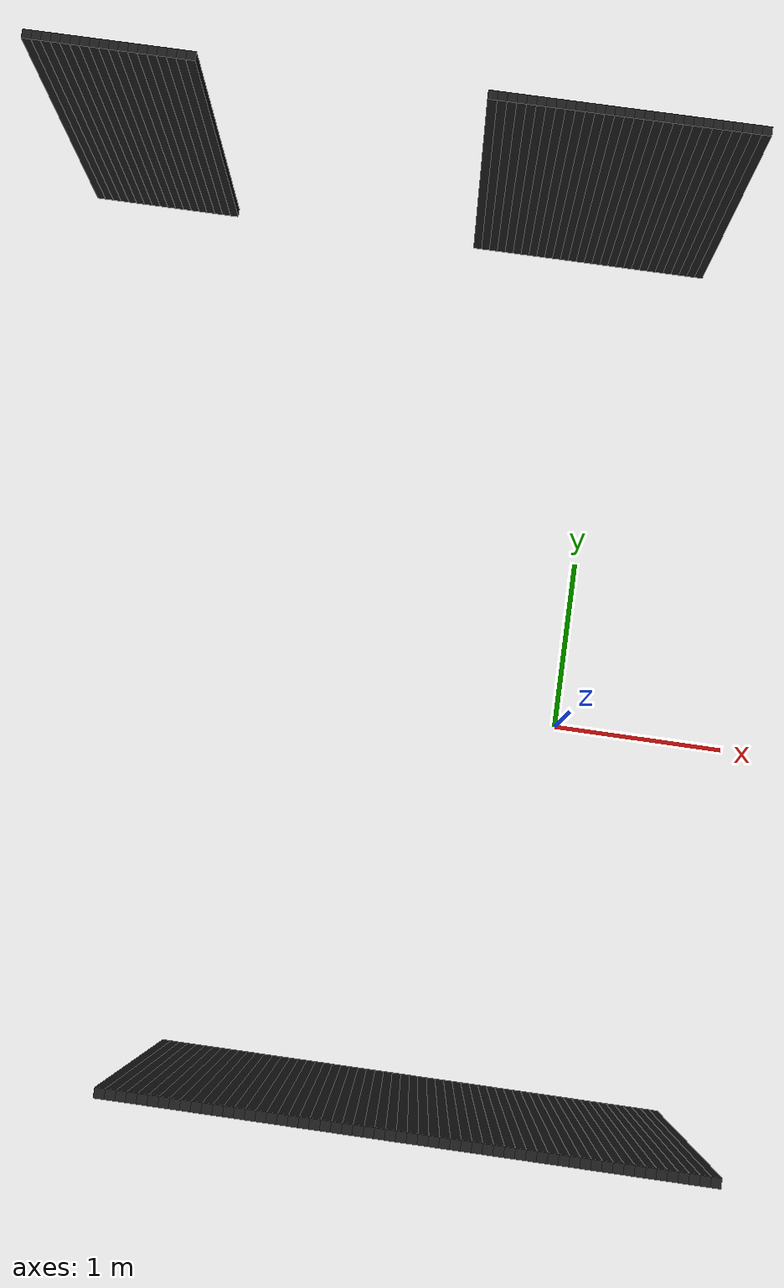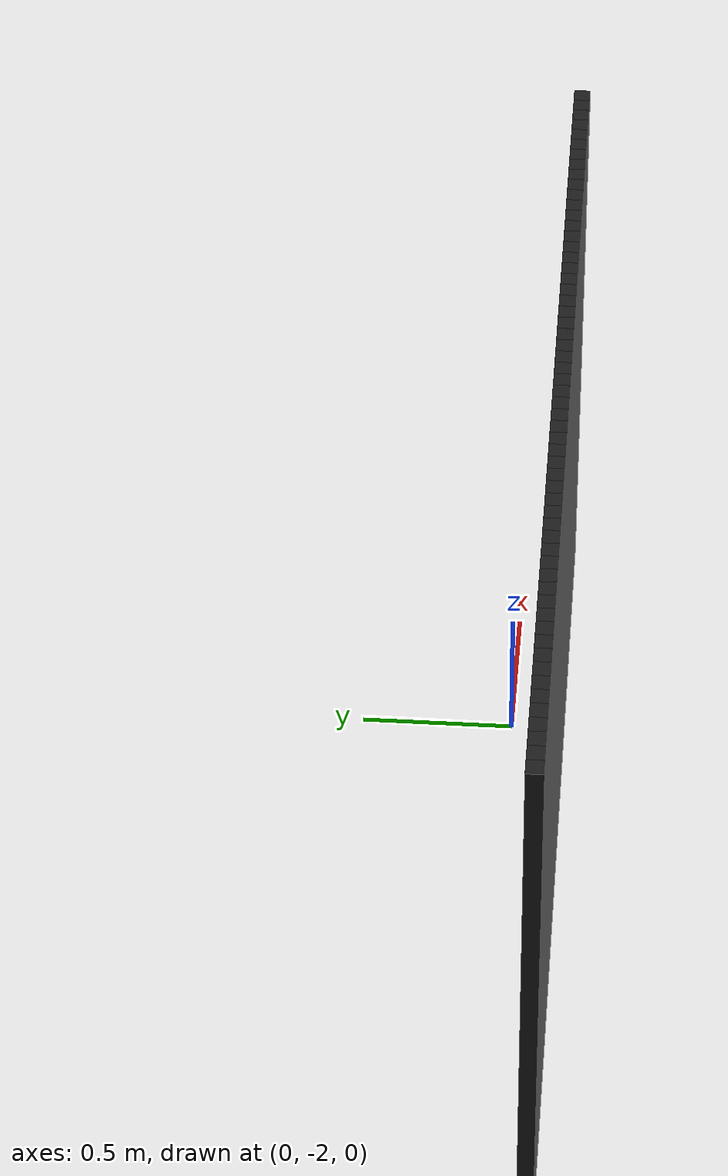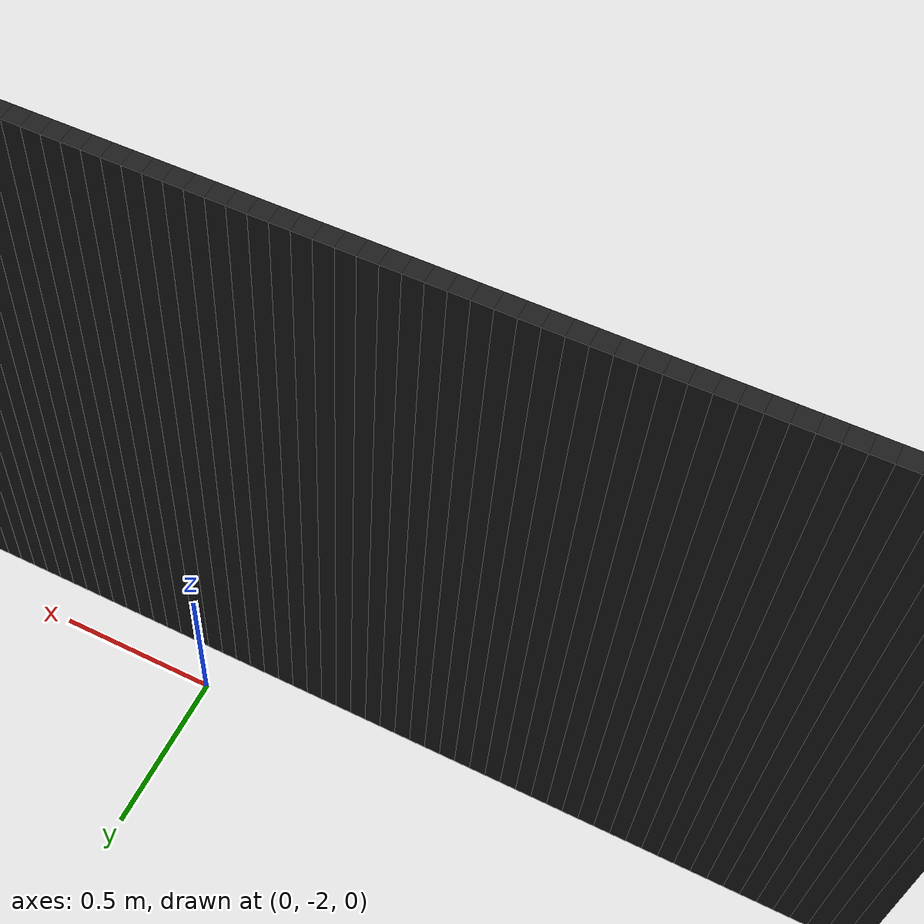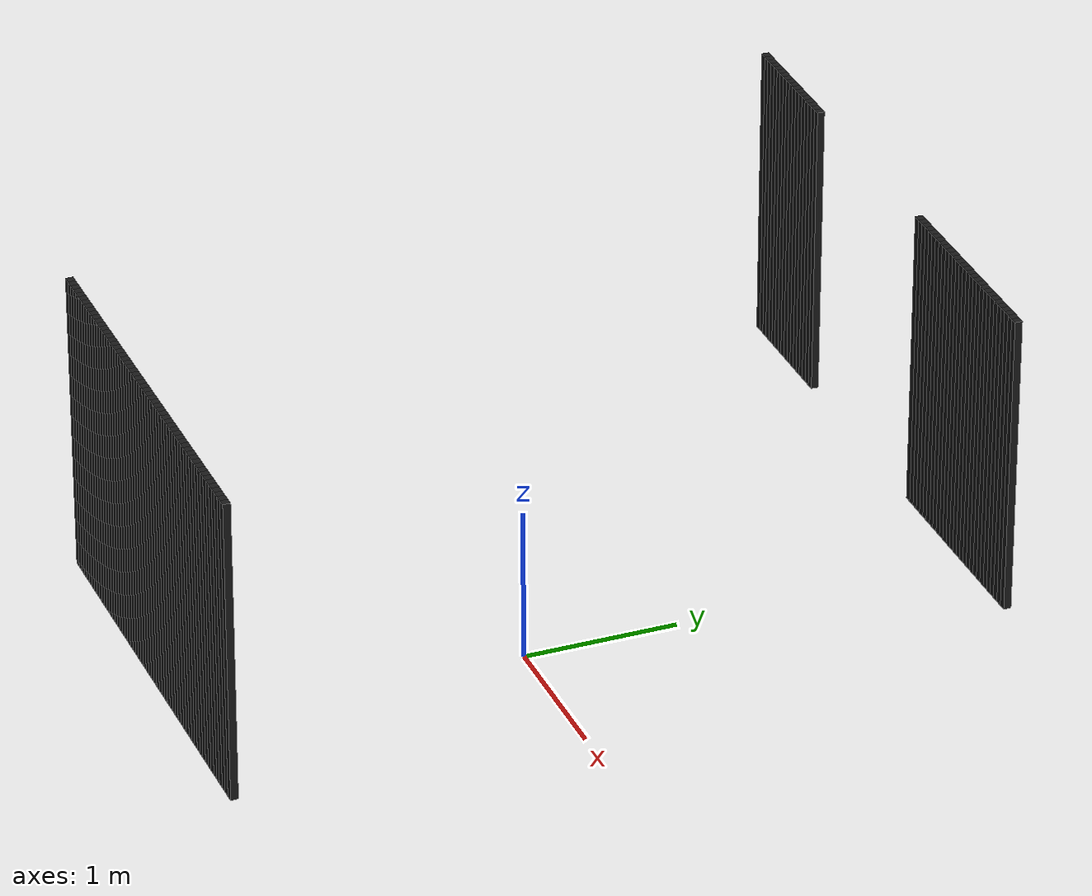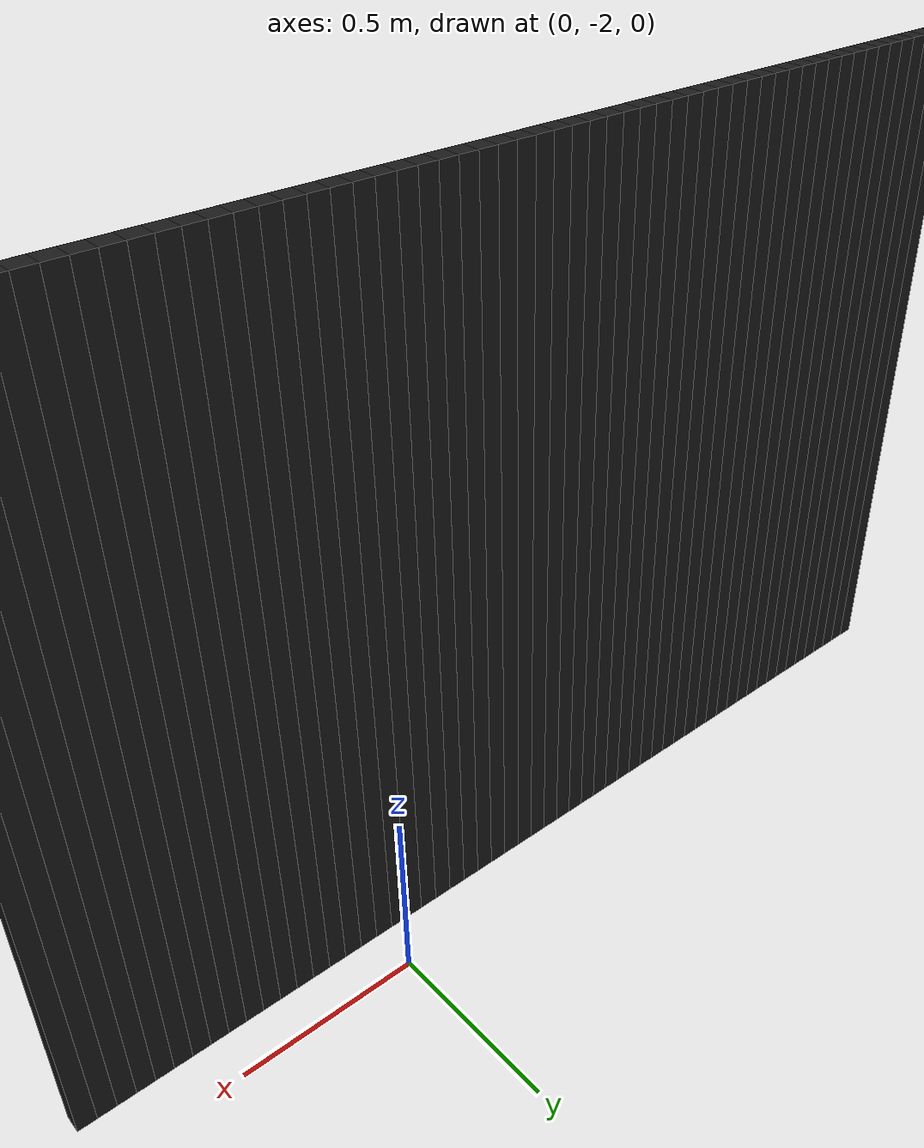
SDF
<sdf version="1.6">
 <model name="obstacle_25_108">
  <pose>-3.26 2.95 1.0 0 0 0</pose>
  <static>true</static>
  <link name="box_link">
   <collision name="box_collision"><geometry><box><size>0.05 0.05 2.0</size></box></geometry></collision>
   <visual name="box_visual">
    <geometry><box><size>0.05 0.05 2.0</size></box></geometry>
    <material><ambient>0 0 0 1</ambient><diffuse>0.1 0.1 0.1 1</diffuse></material>
   </visual>
  </link>
 </model>
 <model name="obstacle_26_108">
  <pose>-3.21 2.95 1.0 0 0 0</pose>
  <static>true</static>
  <link name="box_link">
   <collision name="box_collision"><geometry><box><size>0.05 0.05 2.0</size></box></geometry></collision>
   <visual name="box_visual">
    <geometry><box><size>0.05 0.05 2.0</size></box></geometry>
    <material><ambient>0 0 0 1</ambient><diffuse>0.1 0.1 0.1 1</diffuse></material>
   </visual>
  </link>
 </model>
 <model name="obstacle_27_108">
  <pose>-3.1599999999999997 2.95 1.0 0 0 0</pose>
  <static>true</static>
  <link name="box_link">
   <collision name="box_collision"><geometry><box><size>0.05 0.05 2.0</size></box></geometry></collision>
   <visual name="box_visual">
    <geometry><box><size>0.05 0.05 2.0</size></box></geometry>
    <material><ambient>0 0 0 1</ambient><diffuse>0.1 0.1 0.1 1</diffuse></material>
   </visual>
  </link>
 </model>
 <model name="obstacle_28_108">
  <pose>-3.1099999999999994 2.95 1.0 0 0 0</pose>
  <static>true</static>
  <link name="box_link">
   <collision name="box_collision"><geometry><box><size>0.05 0.05 2.0</size></box></geometry></collision>
   <visual name="box_visual">
    <geometry><box><size>0.05 0.05 2.0</size></box></geometry>
    <material><ambient>0 0 0 1</ambient><diffuse>0.1 0.1 0.1 1</diffuse></material>
   </visual>
  </link>
 </model>
 <model name="obstacle_29_108">
  <pose>-3.0599999999999996 2.95 1.0 0 0 0</pose>
  <static>true</static>
  <link name="box_link">
   <collision name="box_collision"><geometry><box><size>0.05 0.05 2.0</size></box></geometry></collision>
   <visual name="box_visual">
    <geometry><box><size>0.05 0.05 2.0</size></box></geometry>
    <material><ambient>0 0 0 1</ambient><diffuse>0.1 0.1 0.1 1</diffuse></material>
   </visual>
  </link>
 </model>
 <model name="obstacle_30_108">
  <pose>-3.01 2.95 1.0 0 0 0</pose>
  <static>true</static>
  <link name="box_link">
   <collision name="box_collision"><geometry><box><size>0.05 0.05 2.0</size></box></geometry></collision>
   <visual name="box_visual">
    <geometry><box><size>0.05 0.05 2.0</size></box></geometry>
    <material><ambient>0 0 0 1</ambient><diffuse>0.1 0.1 0.1 1</diffuse></material>
   </visual>
  </link>
 </model>
 <model name="obstacle_31_108">
  <pose>-2.96 2.95 1.0 0 0 0</pose>
  <static>true</static>
  <link name="box_link">
   <collision name="box_collision"><geometry><box><size>0.05 0.05 2.0</size></box></geometry></collision>
   <visual name="box_visual">
    <geometry><box><size>0.05 0.05 2.0</size></box></geometry>
    <material><ambient>0 0 0 1</ambient><diffuse>0.1 0.1 0.1 1</diffuse></material>
   </visual>
  </link>
 </model>
 <model name="obstacle_32_108">
  <pose>-2.9099999999999997 2.95 1.0 0 0 0</pose>
  <static>true</static>
  <link name="box_link">
   <collision name="box_collision"><geometry><box><size>0.05 0.05 2.0</size></box></geometry></collision>
   <visual name="box_visual">
    <geometry><box><size>0.05 0.05 2.0</size></box></geometry>
    <material><ambient>0 0 0 1</ambient><diffuse>0.1 0.1 0.1 1</diffuse></material>
   </visual>
  </link>
 </model>
 <model name="obstacle_33_108">
  <pose>-2.8599999999999994 2.95 1.0 0 0 0</pose>
  <static>true</static>
  <link name="box_link">
   <collision name="box_collision"><geometry><box><size>0.05 0.05 2.0</size></box></geometry></collision>
   <visual name="box_visual">
    <geometry><box><size>0.05 0.05 2.0</size></box></geometry>
    <material><ambient>0 0 0 1</ambient><diffuse>0.1 0.1 0.1 1</diffuse></material>
   </visual>
  </link>
 </model>
 <model name="obstacle_34_108">
  <pose>-2.8099999999999996 2.95 1.0 0 0 0</pose>
  <static>true</static>
  <link name="box_link">
   <collision name="box_collision"><geometry><box><size>0.05 0.05 2.0</size></box></geometry></collision>
   <visual name="box_visual">
    <geometry><box><size>0.05 0.05 2.0</size></box></geometry>
    <material><ambient>0 0 0 1</ambient><diffuse>0.1 0.1 0.1 1</diffuse></material>
   </visual>
  </link>
 </model>
 <model name="obstacle_35_108">
  <pose>-2.76 2.95 1.0 0 0 0</pose>
  <static>true</static>
  <link name="box_link">
   <collision name="box_collision"><geometry><box><size>0.05 0.05 2.0</size></box></geometry></collision>
   <visual name="box_visual">
    <geometry><box><size>0.05 0.05 2.0</size></box></geometry>
    <material><ambient>0 0 0 1</ambient><diffuse>0.1 0.1 0.1 1</diffuse></material>
   </visual>
  </link>
 </model>
 <model name="obstacle_36_108">
  <pose>-2.71 2.95 1.0 0 0 0</pose>
  <static>true</static>
  <link name="box_link">
   <collision name="box_collision"><geometry><box><size>0.05 0.05 2.0</size></box></geometry></collision>
   <visual name="box_visual">
    <geometry><box><size>0.05 0.05 2.0</size></box></geometry>
    <material><ambient>0 0 0 1</ambient><diffuse>0.1 0.1 0.1 1</diffuse></material>
   </visual>
  </link>
 </model>
 <model name="obstacle_37_108">
  <pose>-2.6599999999999997 2.95 1.0 0 0 0</pose>
  <static>true</static>
  <link name="box_link">
   <collision name="box_collision"><geometry><box><size>0.05 0.05 2.0</size></box></geometry></collision>
   <visual name="box_visual">
    <geometry><box><size>0.05 0.05 2.0</size></box></geometry>
    <material><ambient>0 0 0 1</ambient><diffuse>0.1 0.1 0.1 1</diffuse></material>
   </visual>
  </link>
 </model>
 <model name="obstacle_38_108">
  <pose>-2.6099999999999994 2.95 1.0 0 0 0</pose>
  <static>true</static>
  <link name="box_link">
   <collision name="box_collision"><geometry><box><size>0.05 0.05 2.0</size></box></geometry></collision>
   <visual name="box_visual">
    <geometry><box><size>0.05 0.05 2.0</size></box></geometry>
    <material><ambient>0 0 0 1</ambient><diffuse>0.1 0.1 0.1 1</diffuse></material>
   </visual>
  </link>
 </model>
 <model name="obstacle_39_108">
  <pose>-2.5599999999999996 2.95 1.0 0 0 0</pose>
  <static>true</static>
  <link name="box_link">
   <collision name="box_collision"><geometry><box><size>0.05 0.05 2.0</size></box></geometry></collision>
   <visual name="box_visual">
    <geometry><box><size>0.05 0.05 2.0</size></box></geometry>
    <material><ambient>0 0 0 1</ambient><diffuse>0.1 0.1 0.1 1</diffuse></material>
   </visual>
  </link>
 </model>
 <model name="obstacle_40_108">
  <pose>-2.51 2.95 1.0 0 0 0</pose>
  <static>true</static>
  <link name="box_link">
   <collision name="box_collision"><geometry><box><size>0.05 0.05 2.0</size></box></geometry></collision>
   <visual name="box_visual">
    <geometry><box><size>0.05 0.05 2.0</size></box></geometry>
    <material><ambient>0 0 0 1</ambient><diffuse>0.1 0.1 0.1 1</diffuse></material>
   </visual>
  </link>
 </model>
 <model name="obstacle_41_108">
  <pose>-2.4599999999999995 2.95 1.0 0 0 0</pose>
  <static>true</static>
  <link name="box_link">
   <collision name="box_collision"><geometry><box><size>0.05 0.05 2.0</size></box></geometry></collision>
   <visual name="box_visual">
    <geometry><box><size>0.05 0.05 2.0</size></box></geometry>
    <material><ambient>0 0 0 1</ambient><diffuse>0.1 0.1 0.1 1</diffuse></material>
   </visual>
  </link>
 </model>
 <model name="obstacle_42_108">
  <pose>-2.4099999999999997 2.95 1.0 0 0 0</pose>
  <static>true</static>
  <link name="box_link">
   <collision name="box_collision"><geometry><box><size>0.05 0.05 2.0</size></box></geometry></collision>
   <visual name="box_visual">
    <geometry><box><size>0.05 0.05 2.0</size></box></geometry>
    <material><ambient>0 0 0 1</ambient><diffuse>0.1 0.1 0.1 1</diffuse></material>
   </visual>
  </link>
 </model>
 <model name="obstacle_73_108">
  <pose>-0.8599999999999994 2.95 1.0 0 0 0</pose>
  <static>true</static>
  <link name="box_link">
   <collision name="box_collision"><geometry><box><size>0.05 0.05 2.0</size></box></geometry></collision>
   <visual name="box_visual">
    <geometry><box><size>0.05 0.05 2.0</size></box></geometry>
    <material><ambient>0 0 0 1</ambient><diffuse>0.1 0.1 0.1 1</diffuse></material>
   </visual>
  </link>
 </model>
 <model name="obstacle_74_108">
  <pose>-0.8099999999999996 2.95 1.0 0 0 0</pose>
  <static>true</static>
  <link name="box_link">
   <collision name="box_collision"><geometry><box><size>0.05 0.05 2.0</size></box></geometry></collision>
   <visual name="box_visual">
    <geometry><box><size>0.05 0.05 2.0</size></box></geometry>
    <material><ambient>0 0 0 1</ambient><diffuse>0.1 0.1 0.1 1</diffuse></material>
   </visual>
  </link>
 </model>
 <model name="obstacle_75_108">
  <pose>-0.7599999999999998 2.95 1.0 0 0 0</pose>
  <static>true</static>
  <link name="box_link">
   <collision name="box_collision"><geometry><box><size>0.05 0.05 2.0</size></box></geometry></collision>
   <visual name="box_visual">
    <geometry><box><size>0.05 0.05 2.0</size></box></geometry>
    <material><ambient>0 0 0 1</ambient><diffuse>0.1 0.1 0.1 1</diffuse></material>
   </visual>
  </link>
 </model>
 <model name="obstacle_76_108">
  <pose>-0.7099999999999995 2.95 1.0 0 0 0</pose>
  <static>true</static>
  <link name="box_link">
   <collision name="box_collision"><geometry><box><size>0.05 0.05 2.0</size></box></geometry></collision>
   <visual name="box_visual">
    <geometry><box><size>0.05 0.05 2.0</size></box></geometry>
    <material><ambient>0 0 0 1</ambient><diffuse>0.1 0.1 0.1 1</diffuse></material>
   </visual>
  </link>
 </model>
 <model name="obstacle_77_108">
  <pose>-0.6599999999999997 2.95 1.0 0 0 0</pose>
  <static>true</static>
  <link name="box_link">
   <collision name="box_collision"><geometry><box><size>0.05 0.05 2.0</size></box></geometry></collision>
   <visual name="box_visual">
    <geometry><box><size>0.05 0.05 2.0</size></box></geometry>
    <material><ambient>0 0 0 1</ambient><diffuse>0.1 0.1 0.1 1</diffuse></material>
   </visual>
  </link>
 </model>
 <model name="obstacle_78_108">
  <pose>-0.6099999999999994 2.95 1.0 0 0 0</pose>
  <static>true</static>
  <link name="box_link">
   <collision name="box_collision"><geometry><box><size>0.05 0.05 2.0</size></box></geometry></collision>
   <visual name="box_visual">
    <geometry><box><size>0.05 0.05 2.0</size></box></geometry>
    <material><ambient>0 0 0 1</ambient><diffuse>0.1 0.1 0.1 1</diffuse></material>
   </visual>
  </link>
 </model>
 <model name="obstacle_79_108">
  <pose>-0.5599999999999996 2.95 1.0 0 0 0</pose>
  <static>true</static>
  <link name="box_link">
   <collision name="box_collision"><geometry><box><size>0.05 0.05 2.0</size></box></geometry></collision>
   <visual name="box_visual">
    <geometry><box><size>0.05 0.05 2.0</size></box></geometry>
    <material><ambient>0 0 0 1</ambient><diffuse>0.1 0.1 0.1 1</diffuse></material>
   </visual>
  </link>
 </model>
 <model name="obstacle_80_108">
  <pose>-0.5099999999999998 2.95 1.0 0 0 0</pose>
  <static>true</static>
  <link name="box_link">
   <collision name="box_collision"><geometry><box><size>0.05 0.05 2.0</size></box></geometry></collision>
   <visual name="box_visual">
    <geometry><box><size>0.05 0.05 2.0</size></box></geometry>
    <material><ambient>0 0 0 1</ambient><diffuse>0.1 0.1 0.1 1</diffuse></material>
   </visual>
  </link>
 </model>
 <model name="obstacle_81_108">
  <pose>-0.45999999999999996 2.95 1.0 0 0 0</pose>
  <static>true</static>
  <link name="box_link">
   <collision name="box_collision"><geometry><box><size>0.05 0.05 2.0</size></box></geometry></collision>
   <visual name="box_visual">
    <geometry><box><size>0.05 0.05 2.0</size></box></geometry>
    <material><ambient>0 0 0 1</ambient><diffuse>0.1 0.1 0.1 1</diffuse></material>
   </visual>
  </link>
 </model>
 <model name="obstacle_82_108">
  <pose>-0.40999999999999925 2.95 1.0 0 0 0</pose>
  <static>true</static>
  <link name="box_link">
   <collision name="box_collision"><geometry><box><size>0.05 0.05 2.0</size></box></geometry></collision>
   <visual name="box_visual">
    <geometry><box><size>0.05 0.05 2.0</size></box></geometry>
    <material><ambient>0 0 0 1</ambient><diffuse>0.1 0.1 0.1 1</diffuse></material>
   </visual>
  </link>
 </model>
 <model name="obstacle_83_108">
  <pose>-0.35999999999999943 2.95 1.0 0 0 0</pose>
  <static>true</static>
  <link name="box_link">
   <collision name="box_collision"><geometry><box><size>0.05 0.05 2.0</size></box></geometry></collision>
   <visual name="box_visual">
    <geometry><box><size>0.05 0.05 2.0</size></box></geometry>
    <material><ambient>0 0 0 1</ambient><diffuse>0.1 0.1 0.1 1</diffuse></material>
   </visual>
  </link>
 </model>
 <model name="obstacle_84_108">
  <pose>-0.3099999999999996 2.95 1.0 0 0 0</pose>
  <static>true</static>
  <link name="box_link">
   <collision name="box_collision"><geometry><box><size>0.05 0.05 2.0</size></box></geometry></collision>
   <visual name="box_visual">
    <geometry><box><size>0.05 0.05 2.0</size></box></geometry>
    <material><ambient>0 0 0 1</ambient><diffuse>0.1 0.1 0.1 1</diffuse></material>
   </visual>
  </link>
 </model>
 <model name="obstacle_85_108">
  <pose>-0.2599999999999998 2.95 1.0 0 0 0</pose>
  <static>true</static>
  <link name="box_link">
   <collision name="box_collision"><geometry><box><size>0.05 0.05 2.0</size></box></geometry></collision>
   <visual name="box_visual">
    <geometry><box><size>0.05 0.05 2.0</size></box></geometry>
    <material><ambient>0 0 0 1</ambient><diffuse>0.1 0.1 0.1 1</diffuse></material>
   </visual>
  </link>
 </model>
 <model name="obstacle_86_108">
  <pose>-0.20999999999999996 2.95 1.0 0 0 0</pose>
  <static>true</static>
  <link name="box_link">
   <collision name="box_collision"><geometry><box><size>0.05 0.05 2.0</size></box></geometry></collision>
   <visual name="box_visual">
    <geometry><box><size>0.05 0.05 2.0</size></box></geometry>
    <material><ambient>0 0 0 1</ambient><diffuse>0.1 0.1 0.1 1</diffuse></material>
   </visual>
  </link>
 </model>
 <model name="obstacle_87_108">
  <pose>-0.15999999999999925 2.95 1.0 0 0 0</pose>
  <static>true</static>
  <link name="box_link">
   <collision name="box_collision"><geometry><box><size>0.05 0.05 2.0</size></box></geometry></collision>
   <visual name="box_visual">
    <geometry><box><size>0.05 0.05 2.0</size></box></geometry>
    <material><ambient>0 0 0 1</ambient><diffuse>0.1 0.1 0.1 1</diffuse></material>
   </visual>
  </link>
 </model>
 <model name="obstacle_88_108">
  <pose>-0.10999999999999943 2.95 1.0 0 0 0</pose>
  <static>true</static>
  <link name="box_link">
   <collision name="box_collision"><geometry><box><size>0.05 0.05 2.0</size></box></geometry></collision>
   <visual name="box_visual">
    <geometry><box><size>0.05 0.05 2.0</size></box></geometry>
    <material><ambient>0 0 0 1</ambient><diffuse>0.1 0.1 0.1 1</diffuse></material>
   </visual>
  </link>
 </model>
 <model name="obstacle_89_108">
  <pose>-0.05999999999999961 2.95 1.0 0 0 0</pose>
  <static>true</static>
  <link name="box_link">
   <collision name="box_collision"><geometry><box><size>0.05 0.05 2.0</size></box></geometry></collision>
   <visual name="box_visual">
    <geometry><box><size>0.05 0.05 2.0</size></box></geometry>
    <material><ambient>0 0 0 1</ambient><diffuse>0.1 0.1 0.1 1</diffuse></material>
   </visual>
  </link>
 </model>
 <model name="obstacle_90_108">
  <pose>-0.009999999999999787 2.95 1.0 0 0 0</pose>
  <static>true</static>
  <link name="box_link">
   <collision name="box_collision"><geometry><box><size>0.05 0.05 2.0</size></box></geometry></collision>
   <visual name="box_visual">
    <geometry><box><size>0.05 0.05 2.0</size></box></geometry>
    <material><ambient>0 0 0 1</ambient><diffuse>0.1 0.1 0.1 1</diffuse></material>
   </visual>
  </link>
 </model>
 <model name="obstacle_91_108">
  <pose>0.040000000000000036 2.95 1.0 0 0 0</pose>
  <static>true</static>
  <link name="box_link">
   <collision name="box_collision"><geometry><box><size>0.05 0.05 2.0</size></box></geometry></collision>
   <visual name="box_visual">
    <geometry><box><size>0.05 0.05 2.0</size></box></geometry>
    <material><ambient>0 0 0 1</ambient><diffuse>0.1 0.1 0.1 1</diffuse></material>
   </visual>
  </link>
 </model>
 <model name="obstacle_92_108">
  <pose>0.09000000000000075 2.95 1.0 0 0 0</pose>
  <static>true</static>
  <link name="box_link">
   <collision name="box_collision"><geometry><box><size>0.05 0.05 2.0</size></box></geometry></collision>
   <visual name="box_visual">
    <geometry><box><size>0.05 0.05 2.0</size></box></geometry>
    <material><ambient>0 0 0 1</ambient><diffuse>0.1 0.1 0.1 1</diffuse></material>
   </visual>
  </link>
 </model>
 <model name="obstacle_93_108">
  <pose>0.14000000000000057 2.95 1.0 0 0 0</pose>
  <static>true</static>
  <link name="box_link">
   <collision name="box_collision"><geometry><box><size>0.05 0.05 2.0</size></box></geometry></collision>
   <visual name="box_visual">
    <geometry><box><size>0.05 0.05 2.0</size></box></geometry>
    <material><ambient>0 0 0 1</ambient><diffuse>0.1 0.1 0.1 1</diffuse></material>
   </visual>
  </link>
 </model>
 <model name="obstacle_94_108">
  <pose>0.1900000000000004 2.95 1.0 0 0 0</pose>
  <static>true</static>
  <link name="box_link">
   <collision name="box_collision"><geometry><box><size>0.05 0.05 2.0</size></box></geometry></collision>
   <visual name="box_visual">
    <geometry><box><size>0.05 0.05 2.0</size></box></geometry>
    <material><ambient>0 0 0 1</ambient><diffuse>0.1 0.1 0.1 1</diffuse></material>
   </visual>
  </link>
 </model>
 <model name="obstacle_95_108">
  <pose>0.2400000000000002 2.95 1.0 0 0 0</pose>
  <static>true</static>
  <link name="box_link">
   <collision name="box_collision"><geometry><box><size>0.05 0.05 2.0</size></box></geometry></collision>
   <visual name="box_visual">
    <geometry><box><size>0.05 0.05 2.0</size></box></geometry>
    <material><ambient>0 0 0 1</ambient><diffuse>0.1 0.1 0.1 1</diffuse></material>
   </visual>
  </link>
 </model>
 <model name="obstacle_96_108">
  <pose>0.2900000000000009 2.95 1.0 0 0 0</pose>
  <static>true</static>
  <link name="box_link">
   <collision name="box_collision"><geometry><box><size>0.05 0.05 2.0</size></box></geometry></collision>
   <visual name="box_visual">
    <geometry><box><size>0.05 0.05 2.0</size></box></geometry>
    <material><ambient>0 0 0 1</ambient><diffuse>0.1 0.1 0.1 1</diffuse></material>
   </visual>
  </link>
 </model>
 <model name="obstacle_97_108">
  <pose>0.34000000000000075 2.95 1.0 0 0 0</pose>
  <static>true</static>
  <link name="box_link">
   <collision name="box_collision"><geometry><box><size>0.05 0.05 2.0</size></box></geometry></collision>
   <visual name="box_visual">
    <geometry><box><size>0.05 0.05 2.0</size></box></geometry>
    <material><ambient>0 0 0 1</ambient><diffuse>0.1 0.1 0.1 1</diffuse></material>
   </visual>
  </link>
 </model>
 <model name="obstacle_98_108">
  <pose>0.39000000000000057 2.95 1.0 0 0 0</pose>
  <static>true</static>
  <link name="box_link">
   <collision name="box_collision"><geometry><box><size>0.05 0.05 2.0</size></box></geometry></collision>
   <visual name="box_visual">
    <geometry><box><size>0.05 0.05 2.0</size></box></geometry>
    <material><ambient>0 0 0 1</ambient><diffuse>0.1 0.1 0.1 1</diffuse></material>
   </visual>
  </link>
 </model>
 <model name="obstacle_99_108">
  <pose>0.4400000000000004 2.95 1.0 0 0 0</pose>
  <static>true</static>
  <link name="box_link">
   <collision name="box_collision"><geometry><box><size>0.05 0.05 2.0</size></box></geometry></collision>
   <visual name="box_visual">
    <geometry><box><size>0.05 0.05 2.0</size></box></geometry>
    <material><ambient>0 0 0 1</ambient><diffuse>0.1 0.1 0.1 1</diffuse></material>
   </visual>
  </link>
 </model>
 <model name="obstacle_100_108">
  <pose>0.4900000000000002 2.95 1.0 0 0 0</pose>
  <static>true</static>
  <link name="box_link">
   <collision name="box_collision"><geometry><box><size>0.05 0.05 2.0</size></box></geometry></collision>
   <visual name="box_visual">
    <geometry><box><size>0.05 0.05 2.0</size></box></geometry>
    <material><ambient>0 0 0 1</ambient><diffuse>0.1 0.1 0.1 1</diffuse></material>
   </visual>
  </link>
 </model>
 <model name="obstacle_101_108">
  <pose>0.5400000000000009 2.95 1.0 0 0 0</pose>
  <static>true</static>
  <link name="box_link">
   <collision name="box_collision"><geometry><box><size>0.05 0.05 2.0</size></box></geometry></collision>
   <visual name="box_visual">
    <geometry><box><size>0.05 0.05 2.0</size></box></geometry>
    <material><ambient>0 0 0 1</ambient><diffuse>0.1 0.1 0.1 1</diffuse></material>
   </visual>
  </link>
 </model>
 <model name="obstacle_50_210">
  <pose>-2.01 -2.1500000000000004 1.0 0 0 0</pose>
  <static>true</static>
  <link name="box_link">
   <collision name="box_collision"><geometry><box><size>0.05 0.05 2.0</size></box></geometry></collision>
   <visual name="box_visual">
    <geometry><box><size>0.05 0.05 2.0</size></box></geometry>
    <material><ambient>0 0 0 1</ambient><diffuse>0.1 0.1 0.1 1</diffuse></material>
   </visual>
  </link>
 </model>
 <model name="obstacle_51_210">
  <pose>-1.9599999999999995 -2.1500000000000004 1.0 0 0 0</pose>
  <static>true</static>
  <link name="box_link">
   <collision name="box_collision"><geometry><box><size>0.05 0.05 2.0</size></box></geometry></collision>
   <visual name="box_visual">
    <geometry><box><size>0.05 0.05 2.0</size></box></geometry>
    <material><ambient>0 0 0 1</ambient><diffuse>0.1 0.1 0.1 1</diffuse></material>
   </visual>
  </link>
 </model>
 <model name="obstacle_52_210">
  <pose>-1.9099999999999997 -2.1500000000000004 1.0 0 0 0</pose>
  <static>true</static>
  <link name="box_link">
   <collision name="box_collision"><geometry><box><size>0.05 0.05 2.0</size></box></geometry></collision>
   <visual name="box_visual">
    <geometry><box><size>0.05 0.05 2.0</size></box></geometry>
    <material><ambient>0 0 0 1</ambient><diffuse>0.1 0.1 0.1 1</diffuse></material>
   </visual>
  </link>
 </model>
 <model name="obstacle_53_210">
  <pose>-1.8599999999999994 -2.1500000000000004 1.0 0 0 0</pose>
  <static>true</static>
  <link name="box_link">
   <collision name="box_collision"><geometry><box><size>0.05 0.05 2.0</size></box></geometry></collision>
   <visual name="box_visual">
    <geometry><box><size>0.05 0.05 2.0</size></box></geometry>
    <material><ambient>0 0 0 1</ambient><diffuse>0.1 0.1 0.1 1</diffuse></material>
   </visual>
  </link>
 </model>
 <model name="obstacle_54_210">
  <pose>-1.8099999999999996 -2.1500000000000004 1.0 0 0 0</pose>
  <static>true</static>
  <link name="box_link">
   <collision name="box_collision"><geometry><box><size>0.05 0.05 2.0</size></box></geometry></collision>
   <visual name="box_visual">
    <geometry><box><size>0.05 0.05 2.0</size></box></geometry>
    <material><ambient>0 0 0 1</ambient><diffuse>0.1 0.1 0.1 1</diffuse></material>
   </visual>
  </link>
 </model>
 <model name="obstacle_55_210">
  <pose>-1.7599999999999998 -2.1500000000000004 1.0 0 0 0</pose>
  <static>true</static>
  <link name="box_link">
   <collision name="box_collision"><geometry><box><size>0.05 0.05 2.0</size></box></geometry></collision>
   <visual name="box_visual">
    <geometry><box><size>0.05 0.05 2.0</size></box></geometry>
    <material><ambient>0 0 0 1</ambient><diffuse>0.1 0.1 0.1 1</diffuse></material>
   </visual>
  </link>
 </model>
 <model name="obstacle_56_210">
  <pose>-1.7099999999999995 -2.1500000000000004 1.0 0 0 0</pose>
  <static>true</static>
  <link name="box_link">
   <collision name="box_collision"><geometry><box><size>0.05 0.05 2.0</size></box></geometry></collision>
   <visual name="box_visual">
    <geometry><box><size>0.05 0.05 2.0</size></box></geometry>
    <material><ambient>0 0 0 1</ambient><diffuse>0.1 0.1 0.1 1</diffuse></material>
   </visual>
  </link>
 </model>
 <model name="obstacle_57_210">
  <pose>-1.6599999999999997 -2.1500000000000004 1.0 0 0 0</pose>
  <static>true</static>
  <link name="box_link">
   <collision name="box_collision"><geometry><box><size>0.05 0.05 2.0</size></box></geometry></collision>
   <visual name="box_visual">
    <geometry><box><size>0.05 0.05 2.0</size></box></geometry>
    <material><ambient>0 0 0 1</ambient><diffuse>0.1 0.1 0.1 1</diffuse></material>
   </visual>
  </link>
 </model>
 <model name="obstacle_58_210">
  <pose>-1.6099999999999994 -2.1500000000000004 1.0 0 0 0</pose>
  <static>true</static>
  <link name="box_link">
   <collision name="box_collision"><geometry><box><size>0.05 0.05 2.0</size></box></geometry></collision>
   <visual name="box_visual">
    <geometry><box><size>0.05 0.05 2.0</size></box></geometry>
    <material><ambient>0 0 0 1</ambient><diffuse>0.1 0.1 0.1 1</diffuse></material>
   </visual>
  </link>
 </model>
 <model name="obstacle_59_210">
  <pose>-1.5599999999999996 -2.1500000000000004 1.0 0 0 0</pose>
  <static>true</static>
  <link name="box_link">
   <collision name="box_collision"><geometry><box><size>0.05 0.05 2.0</size></box></geometry></collision>
   <visual name="box_visual">
    <geometry><box><size>0.05 0.05 2.0</size></box></geometry>
    <material><ambient>0 0 0 1</ambient><diffuse>0.1 0.1 0.1 1</diffuse></material>
   </visual>
  </link>
 </model>
 <model name="obstacle_60_210">
  <pose>-1.5099999999999998 -2.1500000000000004 1.0 0 0 0</pose>
  <static>true</static>
  <link name="box_link">
   <collision name="box_collision"><geometry><box><size>0.05 0.05 2.0</size></box></geometry></collision>
   <visual name="box_visual">
    <geometry><box><size>0.05 0.05 2.0</size></box></geometry>
    <material><ambient>0 0 0 1</ambient><diffuse>0.1 0.1 0.1 1</diffuse></material>
   </visual>
  </link>
 </model>
 <model name="obstacle_61_210">
  <pose>-1.4599999999999995 -2.1500000000000004 1.0 0 0 0</pose>
  <static>true</static>
  <link name="box_link">
   <collision name="box_collision"><geometry><box><size>0.05 0.05 2.0</size></box></geometry></collision>
   <visual name="box_visual">
    <geometry><box><size>0.05 0.05 2.0</size></box></geometry>
    <material><ambient>0 0 0 1</ambient><diffuse>0.1 0.1 0.1 1</diffuse></material>
   </visual>
  </link>
 </model>
 <model name="obstacle_62_210">
  <pose>-1.4099999999999997 -2.1500000000000004 1.0 0 0 0</pose>
  <static>true</static>
  <link name="box_link">
   <collision name="box_collision"><geometry><box><size>0.05 0.05 2.0</size></box></geometry></collision>
   <visual name="box_visual">
    <geometry><box><size>0.05 0.05 2.0</size></box></geometry>
    <material><ambient>0 0 0 1</ambient><diffuse>0.1 0.1 0.1 1</diffuse></material>
   </visual>
  </link>
 </model>
 <model name="obstacle_63_210">
  <pose>-1.3599999999999994 -2.1500000000000004 1.0 0 0 0</pose>
  <static>true</static>
  <link name="box_link">
   <collision name="box_collision"><geometry><box><size>0.05 0.05 2.0</size></box></geometry></collision>
   <visual name="box_visual">
    <geometry><box><size>0.05 0.05 2.0</size></box></geometry>
    <material><ambient>0 0 0 1</ambient><diffuse>0.1 0.1 0.1 1</diffuse></material>
   </visual>
  </link>
 </model>
 <model name="obstacle_64_210">
  <pose>-1.3099999999999996 -2.1500000000000004 1.0 0 0 0</pose>
  <static>true</static>
  <link name="box_link">
   <collision name="box_collision"><geometry><box><size>0.05 0.05 2.0</size></box></geometry></collision>
   <visual name="box_visual">
    <geometry><box><size>0.05 0.05 2.0</size></box></geometry>
    <material><ambient>0 0 0 1</ambient><diffuse>0.1 0.1 0.1 1</diffuse></material>
   </visual>
  </link>
 </model>
 <model name="obstacle_65_210">
  <pose>-1.2599999999999998 -2.1500000000000004 1.0 0 0 0</pose>
  <static>true</static>
  <link name="box_link">
   <collision name="box_collision"><geometry><box><size>0.05 0.05 2.0</size></box></geometry></collision>
   <visual name="box_visual">
    <geometry><box><size>0.05 0.05 2.0</size></box></geometry>
    <material><ambient>0 0 0 1</ambient><diffuse>0.1 0.1 0.1 1</diffuse></material>
   </visual>
  </link>
 </model>
 <model name="obstacle_66_210">
  <pose>-1.2099999999999995 -2.1500000000000004 1.0 0 0 0</pose>
  <static>true</static>
  <link name="box_link">
   <collision name="box_collision"><geometry><box><size>0.05 0.05 2.0</size></box></geometry></collision>
   <visual name="box_visual">
    <geometry><box><size>0.05 0.05 2.0</size></box></geometry>
    <material><ambient>0 0 0 1</ambient><diffuse>0.1 0.1 0.1 1</diffuse></material>
   </visual>
  </link>
 </model>
 <model name="obstacle_67_210">
  <pose>-1.1599999999999997 -2.1500000000000004 1.0 0 0 0</pose>
  <static>true</static>
  <link name="box_link">
   <collision name="box_collision"><geometry><box><size>0.05 0.05 2.0</size></box></geometry></collision>
   <visual name="box_visual">
    <geometry><box><size>0.05 0.05 2.0</size></box></geometry>
    <material><ambient>0 0 0 1</ambient><diffuse>0.1 0.1 0.1 1</diffuse></material>
   </visual>
  </link>
 </model>
 <model name="obstacle_68_210">
  <pose>-1.1099999999999994 -2.1500000000000004 1.0 0 0 0</pose>
  <static>true</static>
  <link name="box_link">
   <collision name="box_collision"><geometry><box><size>0.05 0.05 2.0</size></box></geometry></collision>
   <visual name="box_visual">
    <geometry><box><size>0.05 0.05 2.0</size></box></geometry>
    <material><ambient>0 0 0 1</ambient><diffuse>0.1 0.1 0.1 1</diffuse></material>
   </visual>
  </link>
 </model>
 <model name="obstacle_69_210">
  <pose>-1.0599999999999996 -2.1500000000000004 1.0 0 0 0</pose>
  <static>true</static>
  <link name="box_link">
   <collision name="box_collision"><geometry><box><size>0.05 0.05 2.0</size></box></geometry></collision>
   <visual name="box_visual">
    <geometry><box><size>0.05 0.05 2.0</size></box></geometry>
    <material><ambient>0 0 0 1</ambient><diffuse>0.1 0.1 0.1 1</diffuse></material>
   </visual>
  </link>
 </model>
 <model name="obstacle_70_210">
  <pose>-1.0099999999999998 -2.1500000000000004 1.0 0 0 0</pose>
  <static>true</static>
  <link name="box_link">
   <collision name="box_collision"><geometry><box><size>0.05 0.05 2.0</size></box></geometry></collision>
   <visual name="box_visual">
    <geometry><box><size>0.05 0.05 2.0</size></box></geometry>
    <material><ambient>0 0 0 1</ambient><diffuse>0.1 0.1 0.1 1</diffuse></material>
   </visual>
  </link>
 </model>
 <model name="obstacle_71_210">
  <pose>-0.9599999999999995 -2.1500000000000004 1.0 0 0 0</pose>
  <static>true</static>
  <link name="box_link">
   <collision name="box_collision"><geometry><box><size>0.05 0.05 2.0</size></box></geometry></collision>
   <visual name="box_visual">
    <geometry><box><size>0.05 0.05 2.0</size></box></geometry>
    <material><ambient>0 0 0 1</ambient><diffuse>0.1 0.1 0.1 1</diffuse></material>
   </visual>
  </link>
 </model>
 <model name="obstacle_72_210">
  <pose>-0.9099999999999997 -2.1500000000000004 1.0 0 0 0</pose>
  <static>true</static>
  <link name="box_link">
   <collision name="box_collision"><geometry><box><size>0.05 0.05 2.0</size></box></geometry></collision>
   <visual name="box_visual">
    <geometry><box><size>0.05 0.05 2.0</size></box></geometry>
    <material><ambient>0 0 0 1</ambient><diffuse>0.1 0.1 0.1 1</diffuse></material>
   </visual>
  </link>
 </model>
 <model name="obstacle_73_210">
  <pose>-0.8599999999999994 -2.1500000000000004 1.0 0 0 0</pose>
  <static>true</static>
  <link name="box_link">
   <collision name="box_collision"><geometry><box><size>0.05 0.05 2.0</size></box></geometry></collision>
   <visual name="box_visual">
    <geometry><box><size>0.05 0.05 2.0</size></box></geometry>
    <material><ambient>0 0 0 1</ambient><diffuse>0.1 0.1 0.1 1</diffuse></material>
   </visual>
  </link>
 </model>
 <model name="obstacle_74_210">
  <pose>-0.8099999999999996 -2.1500000000000004 1.0 0 0 0</pose>
  <static>true</static>
  <link name="box_link">
   <collision name="box_collision"><geometry><box><size>0.05 0.05 2.0</size></box></geometry></collision>
   <visual name="box_visual">
    <geometry><box><size>0.05 0.05 2.0</size></box></geometry>
    <material><ambient>0 0 0 1</ambient><diffuse>0.1 0.1 0.1 1</diffuse></material>
   </visual>
  </link>
 </model>
 <model name="obstacle_75_210">
  <pose>-0.7599999999999998 -2.1500000000000004 1.0 0 0 0</pose>
  <static>true</static>
  <link name="box_link">
   <collision name="box_collision"><geometry><box><size>0.05 0.05 2.0</size></box></geometry></collision>
   <visual name="box_visual">
    <geometry><box><size>0.05 0.05 2.0</size></box></geometry>
    <material><ambient>0 0 0 1</ambient><diffuse>0.1 0.1 0.1 1</diffuse></material>
   </visual>
  </link>
 </model>
 <model name="obstacle_76_210">
  <pose>-0.7099999999999995 -2.1500000000000004 1.0 0 0 0</pose>
  <static>true</static>
  <link name="box_link">
   <collision name="box_collision"><geometry><box><size>0.05 0.05 2.0</size></box></geometry></collision>
   <visual name="box_visual">
    <geometry><box><size>0.05 0.05 2.0</size></box></geometry>
    <material><ambient>0 0 0 1</ambient><diffuse>0.1 0.1 0.1 1</diffuse></material>
   </visual>
  </link>
 </model>
 <model name="obstacle_77_210">
  <pose>-0.6599999999999997 -2.1500000000000004 1.0 0 0 0</pose>
  <static>true</static>
  <link name="box_link">
   <collision name="box_collision"><geometry><box><size>0.05 0.05 2.0</size></box></geometry></collision>
   <visual name="box_visual">
    <geometry><box><size>0.05 0.05 2.0</size></box></geometry>
    <material><ambient>0 0 0 1</ambient><diffuse>0.1 0.1 0.1 1</diffuse></material>
   </visual>
  </link>
 </model>
 <model name="obstacle_78_210">
  <pose>-0.6099999999999994 -2.1500000000000004 1.0 0 0 0</pose>
  <static>true</static>
  <link name="box_link">
   <collision name="box_collision"><geometry><box><size>0.05 0.05 2.0</size></box></geometry></collision>
   <visual name="box_visual">
    <geometry><box><size>0.05 0.05 2.0</size></box></geometry>
    <material><ambient>0 0 0 1</ambient><diffuse>0.1 0.1 0.1 1</diffuse></material>
   </visual>
  </link>
 </model>
 <model name="obstacle_79_210">
  <pose>-0.5599999999999996 -2.1500000000000004 1.0 0 0 0</pose>
  <static>true</static>
  <link name="box_link">
   <collision name="box_collision"><geometry><box><size>0.05 0.05 2.0</size></box></geometry></collision>
   <visual name="box_visual">
    <geometry><box><size>0.05 0.05 2.0</size></box></geometry>
    <material><ambient>0 0 0 1</ambient><diffuse>0.1 0.1 0.1 1</diffuse></material>
   </visual>
  </link>
 </model>
 <model name="obstacle_80_210">
  <pose>-0.5099999999999998 -2.1500000000000004 1.0 0 0 0</pose>
  <static>true</static>
  <link name="box_link">
   <collision name="box_collision"><geometry><box><size>0.05 0.05 2.0</size></box></geometry></collision>
   <visual name="box_visual">
    <geometry><box><size>0.05 0.05 2.0</size></box></geometry>
    <material><ambient>0 0 0 1</ambient><diffuse>0.1 0.1 0.1 1</diffuse></material>
   </visual>
  </link>
 </model>
 <model name="obstacle_81_210">
  <pose>-0.45999999999999996 -2.1500000000000004 1.0 0 0 0</pose>
  <static>true</static>
  <link name="box_link">
   <collision name="box_collision"><geometry><box><size>0.05 0.05 2.0</size></box></geometry></collision>
   <visual name="box_visual">
    <geometry><box><size>0.05 0.05 2.0</size></box></geometry>
    <material><ambient>0 0 0 1</ambient><diffuse>0.1 0.1 0.1 1</diffuse></material>
   </visual>
  </link>
 </model>
 <model name="obstacle_82_210">
  <pose>-0.40999999999999925 -2.1500000000000004 1.0 0 0 0</pose>
  <static>true</static>
  <link name="box_link">
   <collision name="box_collision"><geometry><box><size>0.05 0.05 2.0</size></box></geometry></collision>
   <visual name="box_visual">
    <geometry><box><size>0.05 0.05 2.0</size></box></geometry>
    <material><ambient>0 0 0 1</ambient><diffuse>0.1 0.1 0.1 1</diffuse></material>
   </visual>
  </link>
 </model>
 <model name="obstacle_83_210">
  <pose>-0.35999999999999943 -2.1500000000000004 1.0 0 0 0</pose>
  <static>true</static>
  <link name="box_link">
   <collision name="box_collision"><geometry><box><size>0.05 0.05 2.0</size></box></geometry></collision>
   <visual name="box_visual">
    <geometry><box><size>0.05 0.05 2.0</size></box></geometry>
    <material><ambient>0 0 0 1</ambient><diffuse>0.1 0.1 0.1 1</diffuse></material>
   </visual>
  </link>
 </model>
 <model name="obstacle_84_210">
  <pose>-0.3099999999999996 -2.1500000000000004 1.0 0 0 0</pose>
  <static>true</static>
  <link name="box_link">
   <collision name="box_collision"><geometry><box><size>0.05 0.05 2.0</size></box></geometry></collision>
   <visual name="box_visual">
    <geometry><box><size>0.05 0.05 2.0</size></box></geometry>
    <material><ambient>0 0 0 1</ambient><diffuse>0.1 0.1 0.1 1</diffuse></material>
   </visual>
  </link>
 </model>
 <model name="obstacle_85_210">
  <pose>-0.2599999999999998 -2.1500000000000004 1.0 0 0 0</pose>
  <static>true</static>
  <link name="box_link">
   <collision name="box_collision"><geometry><box><size>0.05 0.05 2.0</size></box></geometry></collision>
   <visual name="box_visual">
    <geometry><box><size>0.05 0.05 2.0</size></box></geometry>
    <material><ambient>0 0 0 1</ambient><diffuse>0.1 0.1 0.1 1</diffuse></material>
   </visual>
  </link>
 </model>
 <model name="obstacle_86_210">
  <pose>-0.20999999999999996 -2.1500000000000004 1.0 0 0 0</pose>
  <static>true</static>
  <link name="box_link">
   <collision name="box_collision"><geometry><box><size>0.05 0.05 2.0</size></box></geometry></collision>
   <visual name="box_visual">
    <geometry><box><size>0.05 0.05 2.0</size></box></geometry>
    <material><ambient>0 0 0 1</ambient><diffuse>0.1 0.1 0.1 1</diffuse></material>
   </visual>
  </link>
 </model>
 <model name="obstacle_87_210">
  <pose>-0.15999999999999925 -2.1500000000000004 1.0 0 0 0</pose>
  <static>true</static>
  <link name="box_link">
   <collision name="box_collision"><geometry><box><size>0.05 0.05 2.0</size></box></geometry></collision>
   <visual name="box_visual">
    <geometry><box><size>0.05 0.05 2.0</size></box></geometry>
    <material><ambient>0 0 0 1</ambient><diffuse>0.1 0.1 0.1 1</diffuse></material>
   </visual>
  </link>
 </model>
 <model name="obstacle_88_210">
  <pose>-0.10999999999999943 -2.1500000000000004 1.0 0 0 0</pose>
  <static>true</static>
  <link name="box_link">
   <collision name="box_collision"><geometry><box><size>0.05 0.05 2.0</size></box></geometry></collision>
   <visual name="box_visual">
    <geometry><box><size>0.05 0.05 2.0</size></box></geometry>
    <material><ambient>0 0 0 1</ambient><diffuse>0.1 0.1 0.1 1</diffuse></material>
   </visual>
  </link>
 </model>
 <model name="obstacle_89_210">
  <pose>-0.05999999999999961 -2.1500000000000004 1.0 0 0 0</pose>
  <static>true</static>
  <link name="box_link">
   <collision name="box_collision"><geometry><box><size>0.05 0.05 2.0</size></box></geometry></collision>
   <visual name="box_visual">
    <geometry><box><size>0.05 0.05 2.0</size></box></geometry>
    <material><ambient>0 0 0 1</ambient><diffuse>0.1 0.1 0.1 1</diffuse></material>
   </visual>
  </link>
 </model>
 <model name="obstacle_90_210">
  <pose>-0.009999999999999787 -2.1500000000000004 1.0 0 0 0</pose>
  <static>true</static>
  <link name="box_link">
   <collision name="box_collision"><geometry><box><size>0.05 0.05 2.0</size></box></geometry></collision>
   <visual name="box_visual">
    <geometry><box><size>0.05 0.05 2.0</size></box></geometry>
    <material><ambient>0 0 0 1</ambient><diffuse>0.1 0.1 0.1 1</diffuse></material>
   </visual>
  </link>
 </model>
 <model name="obstacle_91_210">
  <pose>0.040000000000000036 -2.1500000000000004 1.0 0 0 0</pose>
  <static>true</static>
  <link name="box_link">
   <collision name="box_collision"><geometry><box><size>0.05 0.05 2.0</size></box></geometry></collision>
   <visual name="box_visual">
    <geometry><box><size>0.05 0.05 2.0</size></box></geometry>
    <material><ambient>0 0 0 1</ambient><diffuse>0.1 0.1 0.1 1</diffuse></material>
   </visual>
  </link>
 </model>
 <model name="obstacle_92_210">
  <pose>0.09000000000000075 -2.1500000000000004 1.0 0 0 0</pose>
  <static>true</static>
  <link name="box_link">
   <collision name="box_collision"><geometry><box><size>0.05 0.05 2.0</size></box></geometry></collision>
   <visual name="box_visual">
    <geometry><box><size>0.05 0.05 2.0</size></box></geometry>
    <material><ambient>0 0 0 1</ambient><diffuse>0.1 0.1 0.1 1</diffuse></material>
   </visual>
  </link>
 </model>
 <model name="obstacle_93_210">
  <pose>0.14000000000000057 -2.1500000000000004 1.0 0 0 0</pose>
  <static>true</static>
  <link name="box_link">
   <collision name="box_collision"><geometry><box><size>0.05 0.05 2.0</size></box></geometry></collision>
   <visual name="box_visual">
    <geometry><box><size>0.05 0.05 2.0</size></box></geometry>
    <material><ambient>0 0 0 1</ambient><diffuse>0.1 0.1 0.1 1</diffuse></material>
   </visual>
  </link>
 </model>
 <model name="obstacle_94_210">
  <pose>0.1900000000000004 -2.1500000000000004 1.0 0 0 0</pose>
  <static>true</static>
  <link name="box_link">
   <collision name="box_collision"><geometry><box><size>0.05 0.05 2.0</size></box></geometry></collision>
   <visual name="box_visual">
    <geometry><box><size>0.05 0.05 2.0</size></box></geometry>
    <material><ambient>0 0 0 1</ambient><diffuse>0.1 0.1 0.1 1</diffuse></material>
   </visual>
  </link>
 </model>
 <model name="obstacle_95_210">
  <pose>0.2400000000000002 -2.1500000000000004 1.0 0 0 0</pose>
  <static>true</static>
  <link name="box_link">
   <collision name="box_collision"><geometry><box><size>0.05 0.05 2.0</size></box></geometry></collision>
   <visual name="box_visual">
    <geometry><box><size>0.05 0.05 2.0</size></box></geometry>
    <material><ambient>0 0 0 1</ambient><diffuse>0.1 0.1 0.1 1</diffuse></material>
   </visual>
  </link>
 </model>
 <model name="obstacle_96_210">
  <pose>0.2900000000000009 -2.1500000000000004 1.0 0 0 0</pose>
  <static>true</static>
  <link name="box_link">
   <collision name="box_collision"><geometry><box><size>0.05 0.05 2.0</size></box></geometry></collision>
   <visual name="box_visual">
    <geometry><box><size>0.05 0.05 2.0</size></box></geometry>
    <material><ambient>0 0 0 1</ambient><diffuse>0.1 0.1 0.1 1</diffuse></material>
   </visual>
  </link>
 </model>
 <model name="obstacle_97_210">
  <pose>0.34000000000000075 -2.1500000000000004 1.0 0 0 0</pose>
  <static>true</static>
  <link name="box_link">
   <collision name="box_collision"><geometry><box><size>0.05 0.05 2.0</size></box></geometry></collision>
   <visual name="box_visual">
    <geometry><box><size>0.05 0.05 2.0</size></box></geometry>
    <material><ambient>0 0 0 1</ambient><diffuse>0.1 0.1 0.1 1</diffuse></material>
   </visual>
  </link>
 </model>
 <model name="obstacle_98_210">
  <pose>0.39000000000000057 -2.1500000000000004 1.0 0 0 0</pose>
  <static>true</static>
  <link name="box_link">
   <collision name="box_collision"><geometry><box><size>0.05 0.05 2.0</size></box></geometry></collision>
   <visual name="box_visual">
    <geometry><box><size>0.05 0.05 2.0</size></box></geometry>
    <material><ambient>0 0 0 1</ambient><diffuse>0.1 0.1 0.1 1</diffuse></material>
   </visual>
  </link>
 </model>
 <model name="obstacle_99_210">
  <pose>0.4400000000000004 -2.1500000000000004 1.0 0 0 0</pose>
  <static>true</static>
  <link name="box_link">
   <collision name="box_collision"><geometry><box><size>0.05 0.05 2.0</size></box></geometry></collision>
   <visual name="box_visual">
    <geometry><box><size>0.05 0.05 2.0</size></box></geometry>
    <material><ambient>0 0 0 1</ambient><diffuse>0.1 0.1 0.1 1</diffuse></material>
   </visual>
  </link>
 </model>
 <model name="obstacle_100_210">
  <pose>0.4900000000000002 -2.1500000000000004 1.0 0 0 0</pose>
  <static>true</static>
  <link name="box_link">
   <collision name="box_collision"><geometry><box><size>0.05 0.05 2.0</size></box></geometry></collision>
   <visual name="box_visual">
    <geometry><box><size>0.05 0.05 2.0</size></box></geometry>
    <material><ambient>0 0 0 1</ambient><diffuse>0.1 0.1 0.1 1</diffuse></material>
   </visual>
  </link>
 </model>
 <model name="obstacle_101_210">
  <pose>0.5400000000000009 -2.1500000000000004 1.0 0 0 0</pose>
  <static>true</static>
  <link name="box_link">
   <collision name="box_collision"><geometry><box><size>0.05 0.05 2.0</size></box></geometry></collision>
   <visual name="box_visual">
    <geometry><box><size>0.05 0.05 2.0</size></box></geometry>
    <material><ambient>0 0 0 1</ambient><diffuse>0.1 0.1 0.1 1</diffuse></material>
   </visual>
  </link>
 </model>
 <model name="obstacle_102_210">
  <pose>0.5900000000000007 -2.1500000000000004 1.0 0 0 0</pose>
  <static>true</static>
  <link name="box_link">
   <collision name="box_collision"><geometry><box><size>0.05 0.05 2.0</size></box></geometry></collision>
   <visual name="box_visual">
    <geometry><box><size>0.05 0.05 2.0</size></box></geometry>
    <material><ambient>0 0 0 1</ambient><diffuse>0.1 0.1 0.1 1</diffuse></material>
   </visual>
  </link>
 </model>
 <model name="obstacle_103_210">
  <pose>0.6400000000000006 -2.1500000000000004 1.0 0 0 0</pose>
  <static>true</static>
  <link name="box_link">
   <collision name="box_collision"><geometry><box><size>0.05 0.05 2.0</size></box></geometry></collision>
   <visual name="box_visual">
    <geometry><box><size>0.05 0.05 2.0</size></box></geometry>
    <material><ambient>0 0 0 1</ambient><diffuse>0.1 0.1 0.1 1</diffuse></material>
   </visual>
  </link>
 </model>
 <model name="obstacle_104_210">
  <pose>0.6900000000000004 -2.1500000000000004 1.0 0 0 0</pose>
  <static>true</static>
  <link name="box_link">
   <collision name="box_collision"><geometry><box><size>0.05 0.05 2.0</size></box></geometry></collision>
   <visual name="box_visual">
    <geometry><box><size>0.05 0.05 2.0</size></box></geometry>
    <material><ambient>0 0 0 1</ambient><diffuse>0.1 0.1 0.1 1</diffuse></material>
   </visual>
  </link>
 </model>
 <model name="obstacle_105_210">
  <pose>0.7400000000000002 -2.1500000000000004 1.0 0 0 0</pose>
  <static>true</static>
  <link name="box_link">
   <collision name="box_collision"><geometry><box><size>0.05 0.05 2.0</size></box></geometry></collision>
   <visual name="box_visual">
    <geometry><box><size>0.05 0.05 2.0</size></box></geometry>
    <material><ambient>0 0 0 1</ambient><diffuse>0.1 0.1 0.1 1</diffuse></material>
   </visual>
  </link>
 </model>
 <model name="obstacle_106_210">
  <pose>0.7900000000000009 -2.1500000000000004 1.0 0 0 0</pose>
  <static>true</static>
  <link name="box_link">
   <collision name="box_collision"><geometry><box><size>0.05 0.05 2.0</size></box></geometry></collision>
   <visual name="box_visual">
    <geometry><box><size>0.05 0.05 2.0</size></box></geometry>
    <material><ambient>0 0 0 1</ambient><diffuse>0.1 0.1 0.1 1</diffuse></material>
   </visual>
  </link>
 </model>
 <model name="obstacle_107_210">
  <pose>0.8400000000000007 -2.1500000000000004 1.0 0 0 0</pose>
  <static>true</static>
  <link name="box_link">
   <collision name="box_collision"><geometry><box><size>0.05 0.05 2.0</size></box></geometry></collision>
   <visual name="box_visual">
    <geometry><box><size>0.05 0.05 2.0</size></box></geometry>
    <material><ambient>0 0 0 1</ambient><diffuse>0.1 0.1 0.1 1</diffuse></material>
   </visual>
  </link>
 </model>
</sdf>
